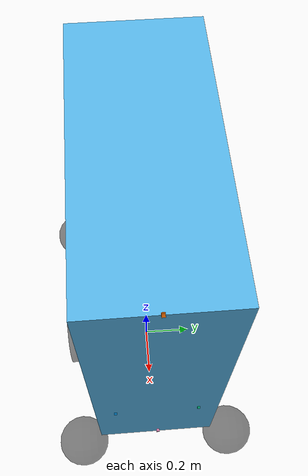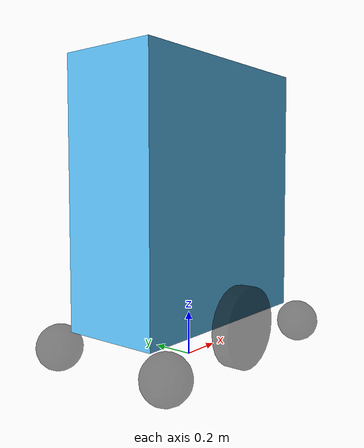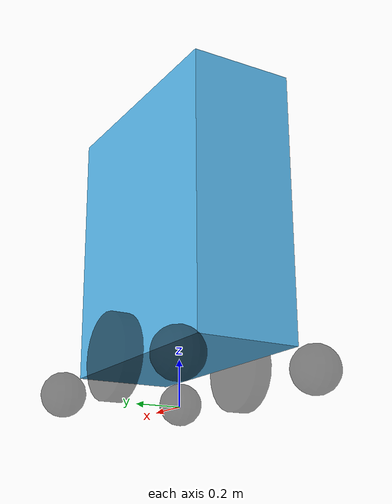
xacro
<robot name="pomo" xmlns:xacro="http://ros.org/wiki/xacro">

	<xacro:include filename="$(find pomo_description)/urdf/wheel.urdf.xacro"/>
	<xacro:include filename="$(find pomo_description)/urdf/caster.urdf.xacro"/>

	<!-- conversion units -->
	<xacro:property name="inch" value="0.0254"/>
	<xacro:property name="lb" value="0.453592"/>
	<xacro:property name="deg" value="${pi/180.0}"/>

	<xacro:property name="lx" value="${41*inch}"/>
	<xacro:property name="ly" value="${24*inch}"/>
	<xacro:property name="lz" value="${46*inch}"/>
	<xacro:property name="m" value="${345*lb}"/> <!-- mass -->

	<xacro:property name="cs" value="0.01"/> <!-- camera size ... -->
	<xacro:property name="cm" value="0.1"/> <!-- camera mass ... -->
	<xacro:property name="ch" value="${20*inch}"/> <!-- camera height (from ground) -->
	<xacro:property name="ca" value="45.0"/> <!-- camera pitch, deg -->
	<xacro:property name="cd" value="${12*inch}"/> <!-- stereo camera distance (baseline), m -->

	<xacro:property name="wd" value="${24*inch}"/> <!-- wheel separation -->
	<xacro:property name="wr" value="${0.5*14.3*inch}"/> <!-- wheel radius -->
	<xacro:property name="wt" value="${3.1*inch}"/> <!-- wheel thickness -->
	<xacro:property name="wm" value="${4.0*lb}"/> <!-- wheel mass -->

	<xacro:property name="cwr" value="${0.5*8*inch}"/>
	<xacro:property name="cwt" value="${2*inch}"/>
	<xacro:property name="cwm" value="${1*lb}"/>

	<xacro:macro name="box_inertia" params="x y z mass">
		<inertia ixx="${0.0833333 * mass * (y*y + z*z)}" ixy="0.0" ixz="0.0"
			iyy="${0.0833333 * mass * (x*x + z*z)}" iyz="0.0"
			izz="${0.0833333 * mass * (x*x + y*y)}" />
	</xacro:macro>

	<!-- at ground plane -->
	<link name="base_footprint">
	</link>

	<link name="base_link">
		<inertial>
			<origin xyz="0 0 0" rpy="0 0 0"/>
			<mass value="${m}" />
			<xacro:box_inertia x="${lx}" y="${ly-2*wt}" z="${lz}" mass="${m}"/>
		</inertial>
		<visual>
			<origin xyz="0 0 0" rpy="0 0 0"/>
			<geometry>
				<box size="${lx} ${ly-2*wt} ${lz}"/>
			</geometry>
		</visual>
		<collision>
			<origin xyz="0 0 0" rpy="0 0 0"/>
			<geometry>
				<box size="${lx} ${ly-2*wt} ${lz}"/>
			</geometry>
		</collision>
	</link>

	<link name="left_camera">
		<inertial>
			<origin xyz="0 0 0" rpy="0 0 0"/>
			<mass value="${cm}" />
			<xacro:box_inertia x="${cs}" y="${cs}" z="${cs}" mass="${cm}"/>
		</inertial>
		<visual>
			<origin xyz="0 0 0" rpy="0 0 0"/>
			<geometry>
				<box size="${cs} ${cs} ${cs}"/>
			</geometry>
		</visual>
		<collision>
			<origin xyz="0 0 0" rpy="0 0 0"/>
			<geometry>
				<box size="${cs} ${cs} ${cs}"/>
			</geometry>
		</collision>
	</link>
	<joint
		name="left_camera_joint"
		type="fixed">
		<origin
			xyz="${0.5*lx} ${0.5*cd} ${ch-0.5*lz-wr}"
			rpy="0 ${ca*deg} 0" />
		<parent
			link="base_link" />
		<child
			link="left_camera" />
		<axis
			xyz="0 1 0" />
	</joint>

	<joint name="left_camera_optical_joint" type="fixed">
		<origin xyz="0 0 0" rpy="${-pi/2} 0 ${-pi/2}"/>
		<parent link="left_camera"/>
		<child link="left_camera_optical"/>
	</joint>

	<link name="left_camera_optical">
	</link>

	<link name="right_camera">
		<inertial>
			<origin xyz="0 0 0" rpy="0 0 0"/>
			<mass value="${cm}" />
			<xacro:box_inertia x="${cs}" y="${cs}" z="${cs}" mass="${cm}"/>
		</inertial>
		<visual>
			<origin xyz="0 0 0" rpy="0 0 0"/>
			<geometry>
				<box size="${cs} ${cs} ${cs}"/>
			</geometry>
		</visual>
		<collision>
			<origin xyz="0 0 0" rpy="0 0 0"/>
			<geometry>
				<box size="${cs} ${cs} ${cs}"/>
			</geometry>
		</collision>
	</link>
	<joint
		name="right_camera_joint"
		type="fixed">
		<origin
			xyz="${0.5*lx} ${-0.5*cd} ${ch-0.5*lz-wr}"
			rpy="0 ${ca*deg} 0" />
		<parent
			link="base_link" />
		<child
			link="right_camera" />
		<axis
			xyz="0 1 0" />
	</joint>
	<link name="right_camera_optical">
	</link>
	<joint name="right_camera_optical_joint" type="fixed">
		<origin xyz="0 0 0" rpy="${-pi/2} 0 ${-pi/2}"/>
		<parent link="right_camera"/>
		<child link="right_camera_optical"/>
	</joint>

	<link name="lidar_link">
		<inertial>
			<origin xyz="0 0 0" rpy="0 0 0"/>
			<mass value="${cm}" />
			<xacro:box_inertia x="${cs}" y="${cs}" z="${cs}" mass="${cm}"/>
		</inertial>
		<visual>
			<origin xyz="0 0 0" rpy="0 0 0"/>
			<geometry>
				<box size="${cs} ${cs} ${cs}"/>
			</geometry>
		</visual>
		<collision>
			<origin xyz="0 0 0" rpy="0 0 0"/>
			<geometry>
				<box size="${cs} ${cs} ${cs}"/>
			</geometry>
		</collision>
	</link>

	<joint name="lidar_joint" type="revolute"> <!-- configurable angle -->
		<limit upper="${pi/2}" lower="${-pi/2}" velocity="${0.1*pi}" effort="10000000"/>
		<pose>0 0 0 0 0 0</pose>
		<origin
			xyz="${0.55*lx} 0 ${-0.3*lz}"
			rpy="0 0 0" />
		<parent
			link="base_link" />
		<child
			link="lidar_link" />
		<axis
			xyz="0 1 0" rpy="0 0 0"/>
	</joint>

	<transmission name="lidar_transmission">
		<type>transmission_interface/SimpleTransmission</type>
		<actuator name="lidar_servo">
			<hardwareInterface>hardware_interface/EffortJointInterface</hardwareInterface>
			<mechanicalReduction>1</mechanicalReduction>
		</actuator>
		<joint name="lidar_joint">
			<hardwareInterface>hardware_interface/EffortJointInterface</hardwareInterface>
		</joint>
	</transmission>

	<gazebo reference="lidar_link">
		<sensor type="ray" name="lidar">
			<pose>0 0 0 0 0 0</pose>
			<visualize>true</visualize>
			<update_rate>40</update_rate>
			<ray>
				<scan>
					<horizontal>
						<samples>1024</samples>
						<resolution>1</resolution>
						<min_angle>-2.35</min_angle> <!-- +-135 deg -->
						<max_angle>2.35</max_angle>
					</horizontal>
				</scan>
				<range>
					<min>0.06</min>
					<max>4.0</max>
					<resolution>0.01</resolution>
				</range>
				<noise>
					<type>gaussian</type>
					<mean>0.0</mean>
					<stddev>0.01</stddev>
				</noise>
			</ray>
			<plugin name="gazebo_ros_head_hokuyo_controller" filename="libgazebo_ros_laser.so">
				<topicName>scan</topicName>
				<frameName>lidar_link</frameName>
			</plugin>
		</sensor>
	</gazebo>

	<xacro:wheel wheel_prefix="left" wheel_mass="${wm}" wheel_radius="${wr}" wheel_thickness="${wt}" parent="base_link">
		<origin xyz="0 ${0.5*wd} ${-0.5*lz}" rpy="0 0 0"/>
	</xacro:wheel>
	<xacro:wheel wheel_prefix="right" wheel_mass="${wm}" wheel_radius="${wr}" wheel_thickness="${wt}" parent="base_link">
		<origin xyz="0 ${-0.5*wd} ${-0.5*lz}" rpy="0 0 0"/>
	</xacro:wheel>

	<xacro:caster wheel_prefix="fl" wheel_mass="${cwm}" wheel_radius="${cwr}" parent="base_link">
		<origin xyz="${0.5*lx} ${0.5*wd} ${-0.5*lz-wr+cwr}" rpy="0 0 0"/>
	</xacro:caster>
	<xacro:caster wheel_prefix="fr" wheel_mass="${cwm}" wheel_radius="${cwr}" parent="base_link">
		<origin xyz="${0.5*lx} ${-0.5*wd} ${-0.5*lz-wr+cwr}" rpy="0 0 0"/>
	</xacro:caster>
	<xacro:caster wheel_prefix="bl" wheel_mass="${cwm}" wheel_radius="${cwr}" parent="base_link">
		<origin xyz="${-0.5*lx} ${0.5*wd} ${-0.5*lz-wr+cwr}" rpy="0 0 0"/>
	</xacro:caster>
	<xacro:caster wheel_prefix="br" wheel_mass="${cwm}" wheel_radius="${cwr}" parent="base_link">
		<origin xyz="${-0.5*lx} ${-0.5*wd} ${-0.5*lz-wr+cwr}" rpy="0 0 0"/>
	</xacro:caster>

	<joint name="base_footprint_joint" type="fixed">
		<origin xyz="0 0 ${0.5*lz+wr}" rpy="0 0 0"/>
		<parent link="base_footprint"/>
		<child link="base_link"/>
	</joint>

	<gazebo>
		<plugin name="gazebo_ros_control" filename="libgazebo_ros_control.so">
			<robotNamespace>/pomo</robotNamespace>
			<robotSimType>gazebo_ros_control/DefaultRobotHWSim</robotSimType>
		</plugin>
	</gazebo>

	<gazebo reference="left_camera">
		<sensor type="camera" name="stereo/left">
			<update_rate>30.0</update_rate>
			<camera>
				<horizontal_fov>1.04</horizontal_fov>
				<image>
					<width>640</width>
					<height>480</height>
					<format>R8G8B8</format>
				</image>
				<clip>
					<near>0.02</near>
					<far>300</far>
				</clip>
				<noise>
					<type>gaussian</type>
					<mean>0.0</mean>
					<stddev>0.007</stddev>
				</noise>
			</camera>
			<plugin name="camera_controller" filename="libgazebo_ros_camera.so">
				<alwaysOn>true</alwaysOn>
				<updateRate>30.0</updateRate>
				<cameraName>stereo/left</cameraName>
				<imageTopicName>image_raw</imageTopicName>
				<cameraInfoTopicName>camera_info</cameraInfoTopicName>
				<frameName>left_camera_optical</frameName>
			</plugin>
		</sensor>
	</gazebo>

	<gazebo reference="right_camera">
		<sensor type="camera" name="stereo/right">
			<update_rate>30.0</update_rate>
			<camera>
				<horizontal_fov>1.04</horizontal_fov>
				<image>
					<width>640</width>
					<height>480</height>
					<format>R8G8B8</format>
				</image>
				<clip>
					<near>0.02</near>
					<far>300</far>
				</clip>
				<noise>
					<type>gaussian</type>
					<mean>0.0</mean>
					<stddev>0.007</stddev>
				</noise>
			</camera>
			<plugin name="camera_controller" filename="libgazebo_ros_camera.so">
				<alwaysOn>true</alwaysOn>
				<updateRate>30.0</updateRate>
				<cameraName>stereo/right</cameraName>
				<imageTopicName>image_raw</imageTopicName>
				<cameraInfoTopicName>camera_info</cameraInfoTopicName>
				<frameName>right_camera_optical</frameName>
				<hackBaseline>${cd}</hackBaseline>
			</plugin>
		</sensor>
	</gazebo>

	<link name="kinect_link">
		<inertial>
			<origin xyz="0 0 0" rpy="0 0 0"/>
			<mass value="${cm}" />
			<xacro:box_inertia x="${cs}" y="${cs}" z="${cs}" mass="${cm}"/>
		</inertial>
		<visual>
			<origin xyz="0 0 0" rpy="0 0 0"/>
			<geometry>
				<box size="${cs} ${cs} ${cs}"/>
			</geometry>
		</visual>
		<collision>
			<origin xyz="0 0 0" rpy="0 0 0"/>
			<geometry>
				<box size="${cs} ${cs} ${cs}"/>
			</geometry>
		</collision>
	</link>
	<joint
		name="kinect_joint"
		type="fixed">
		<origin
			xyz="${0.5*lx} 0 ${0.5*lz}"
			rpy="0 ${ca*deg} 0" />
		<parent
			link="base_link" />
		<child
			link="kinect_link" />
		<axis
			xyz="0 1 0" />
	</joint>
	<link name="kinect_optical">
	</link>
	<joint name="kinect_optical_joint" type="fixed">
		<origin xyz="0 0 0" rpy="${-pi/2} 0 ${-pi/2}"/>
		<parent link="kinect_link"/>
		<child link="kinect_optical"/>
	</joint>
	<gazebo reference="kinect_link">
		<sensor type="depth" name="kinect">
			<always_on>true</always_on>
			<update_rate>20.0</update_rate>
			<camera>
				<horizontal_fov>${60.0*deg}</horizontal_fov>
				<image>
					<format>B8G8R8</format>
					<width>640</width>
					<height>480</height>
				</image>
				<clip>
					<near>0.05</near>
					<far>8.0</far>
				</clip>
				<!-- WARNING : no noise in depth -->
				<noise>
					<type>gaussian</type>
					<mean>0.0</mean>
					<stddev>0.01</stddev>
				</noise>
			</camera>
			<plugin name="kinect_camera_controller" filename="libgazebo_ros_openni_kinect.so">
				<cameraName>kinect</cameraName>
				<alwaysOn>true</alwaysOn>
				<updateRate>10</updateRate>
				<imageTopicName>rgb/image_raw</imageTopicName>
				<depthImageTopicName>depth/image_raw</depthImageTopicName>
				<pointCloudTopicName>depth/points</pointCloudTopicName>
				<cameraInfoTopicName>rgb/camera_info</cameraInfoTopicName>
				<depthImageCameraInfoTopicName>depth/camera_info</depthImageCameraInfoTopicName>
				<frameName>kinect_optical</frameName>
				<baseline>0.1</baseline>
				<distortion_k1>0.0</distortion_k1>
				<distortion_k2>0.0</distortion_k2>
				<distortion_k3>0.0</distortion_k3>
				<distortion_t1>0.0</distortion_t1>
				<distortion_t2>0.0</distortion_t2>
				<pointCloudCutoff>0.4</pointCloudCutoff>
			</plugin>
		</sensor>
	</gazebo>

</robot>

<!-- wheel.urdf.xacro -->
<robot xmlns:xacro="http://ros.org/wiki/xacro" name="wheel">

	<xacro:macro name="cylinder_inertia" params="m r h">
		<inertia  ixx="${m*(3*r*r+h*h)/12}" ixy = "0" ixz = "0"
			iyy="${m*(3*r*r+h*h)/12}" iyz = "0"
			izz="${m*r*r/2}"
			/>
	</xacro:macro>

	<xacro:macro name="wheel" params="wheel_prefix wheel_mass wheel_radius wheel_thickness parent *origin">
		<link name="${wheel_prefix}_wheel_link">
			<inertial>
				<mass value="${wheel_mass}"/>
				<cylinder_inertia m="${wheel_mass}" r="${wheel_radius}" h="${wheel_thickness}"/>
			</inertial>
			<visual>
				<origin xyz="0 0 0" rpy="${pi/2} 0 0"/>
				<geometry>
					<cylinder length="${wheel_thickness}" radius="${wheel_radius}"/>
				</geometry>
				<material name="black">
					<color rgba="0 0 0 0.5"/>
				</material>
			</visual>
			<collision>
				<origin xyz="0.0 0.0 0" rpy="${pi/2} 0 0"/>
				<geometry>
					<cylinder length="${wheel_thickness}" radius="${wheel_radius}"/>
				</geometry>
			</collision>
		</link>

		<gazebo reference="${wheel_prefix}_wheel_link">
			<mu1 value="1.0"/>
			<mu2 value="1.0"/>
			<kp value="1000000.0" />
			<kd value="1.0" />
		</gazebo>

		<joint name="${wheel_prefix}_wheel_joint" type="continuous">
			<parent link="base_link"/>
			<child link="${wheel_prefix}_wheel_link"/>
			<xacro:insert_block name="origin"/>
			<axis xyz="0 1 0" rpy="0 0 0"/>
		</joint>

		<transmission name="${wheel_prefix}_wheel_transmission">
			<type>transmission_interface/SimpleTransmission</type>
			<actuator name="${wheel_prefix}_wheel_motor">
				<hardwareInterface>hardware_interface/VelocityJointInterface</hardwareInterface>
				<mechanicalReduction>1</mechanicalReduction>
			</actuator>
			<joint name="${wheel_prefix}_wheel_joint">
				<hardwareInterface>hardware_interface/VelocityJointInterface</hardwareInterface>
			</joint>
		</transmission>

	</xacro:macro>
</robot>

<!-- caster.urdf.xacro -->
<robot xmlns:xacro="http://ros.org/wiki/xacro" name="caster">

	<xacro:macro name="cylinder_inertia" params="m r h">
		<inertia  ixx="${m*(3*r*r+h*h)/12}" ixy = "0" ixz = "0"
			iyy="${m*(3*r*r+h*h)/12}" iyz = "0"
			izz="${m*r*r/2}"
			/>
	</xacro:macro>

	<xacro:macro name="caster" params="wheel_prefix wheel_mass wheel_radius parent *origin">
		<link name="${wheel_prefix}_caster_link">
			<inertial>
				<mass value="${wheel_mass}"/>
				<sphere radius="${wheel_radius}"/>
				<cylinder_inertia m="${wheel_mass}" r="${wheel_radius}" h="${wheel_radius}"/>
			</inertial>
			<visual>
				<origin xyz="0 0 0" rpy="${pi/2} 0 0"/>
				<geometry>
					<sphere radius="${wheel_radius}"/>
				</geometry>
				<material name="black">
					<color rgba="0 0 0 0.5"/>
				</material>
			</visual>
			<collision>
				<origin xyz="0.0 0.0 0" rpy="${pi/2} 0 0"/>
				<geometry>
					<sphere radius="${wheel_radius}"/>
				</geometry>
				<surface>
					<friction>
						<ode>
							<mu>0</mu>
							<mu2>0</mu2>
							<slip1>1.0</slip1>
							<slip2>1.0</slip2>
						</ode>
					</friction>
				</surface>

			</collision>
		</link>

		<gazebo reference="${wheel_prefix}_caster_link">
			<mu1 value="0.0"/>
			<mu2 value="0.0"/>
			<kp value="1000000.0" />
			<kd value="1.0" />
		</gazebo>

		<joint name="${wheel_prefix}_caster_joint" type="fixed">
			<parent link="base_link"/>
			<child link="${wheel_prefix}_caster_link"/>
			<xacro:insert_block name="origin"/>
			<axis xyz="0 1 0" rpy="0 0 0"/>
		</joint>
	</xacro:macro>
</robot>
